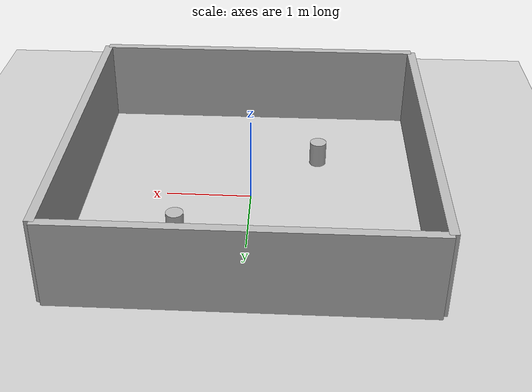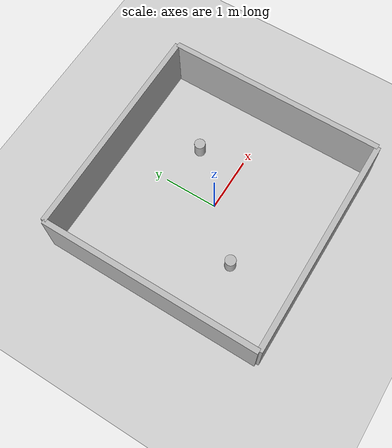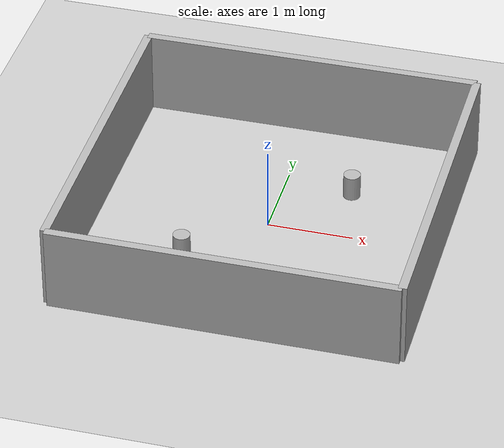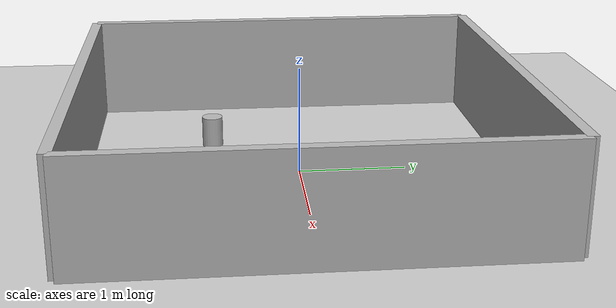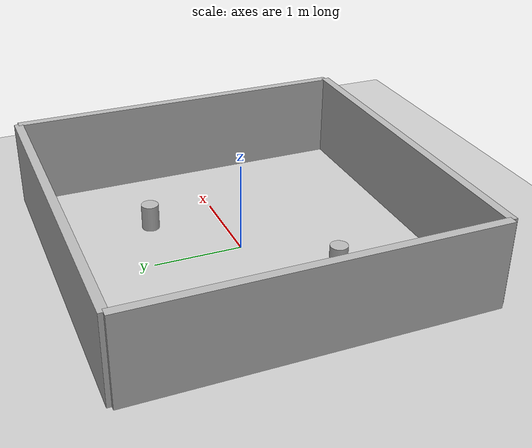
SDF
<?xml version="1.0" ?>
<sdf version="1.6">

  <world name="room_world">

    <include>
      <uri>model://ground_plane</uri>
    </include>

    <include>
      <uri>model://sun</uri>
    </include>

    <!-- Front Wall -->
    <model name="wall_front">
      <static>true</static>
      <pose>0 2 0.5 0 0 0</pose>
      <link name="link">
        <collision name="collision">
          <geometry>
            <box><size>4 0.1 1</size></box>
          </geometry>
        </collision>
        <visual name="visual">
          <geometry>
            <box><size>4 0.1 1</size></box>
          </geometry>
        </visual>
      </link>
    </model>

    <!-- Back Wall -->
    <model name="wall_back">
      <static>true</static>
      <pose>0 -2 0.5 0 0 0</pose>
      <link name="link">
        <collision name="collision">
          <geometry>
            <box><size>4 0.1 1</size></box>
          </geometry>
        </collision>
        <visual name="visual">
          <geometry>
            <box><size>4 0.1 1</size></box>
          </geometry>
        </visual>
      </link>
    </model>

    <!-- Left Wall -->
    <model name="wall_left">
      <static>true</static>
      <pose>-2 0 0.5 0 0 1.57</pose>
      <link name="link">
        <collision name="collision">
          <geometry>
            <box><size>4 0.1 1</size></box>
          </geometry>
        </collision>
        <visual name="visual">
          <geometry>
            <box><size>4 0.1 1</size></box>
          </geometry>
        </visual>
      </link>
    </model>

    <!-- Right Wall -->
    <model name="wall_right">
      <static>true</static>
      <pose>2 0 0.5 0 0 1.57</pose>
      <link name="link">
        <collision name="collision">
          <geometry>
            <box><size>4 0.1 1</size></box>
          </geometry>
        </collision>
        <visual name="visual">
          <geometry>
            <box><size>4 0.1 1</size></box>
          </geometry>
        </visual>
      </link>
    </model>

    <!-- Traffic Cone 1 -->
    <model name="cone1">
      <static>true</static>
      <pose>0.8 0.8 0.15 0 0 0</pose>
      <link name="link">
        <collision name="collision">
          <geometry>
            <cylinder>
              <radius>0.1</radius>
              <length>0.3</length>
            </cylinder>
          </geometry>
        </collision>
        <visual name="visual">
          <geometry>
            <cylinder>
              <radius>0.1</radius>
              <length>0.3</length>
            </cylinder>
          </geometry>
        </visual>
      </link>
    </model>

    <!-- Traffic Cone 2 -->
    <model name="cone2">
      <static>true</static>
      <pose>-0.8 -0.8 0.15 0 0 0</pose>
      <link name="link">
        <collision name="collision">
          <geometry>
            <cylinder>
              <radius>0.1</radius>
              <length>0.3</length>
            </cylinder>
          </geometry>
        </collision>
        <visual name="visual">
          <geometry>
            <cylinder>
              <radius>0.1</radius>
              <length>0.3</length>
            </cylinder>
          </geometry>
        </visual>
      </link>
    </model>

  </world>
</sdf>
